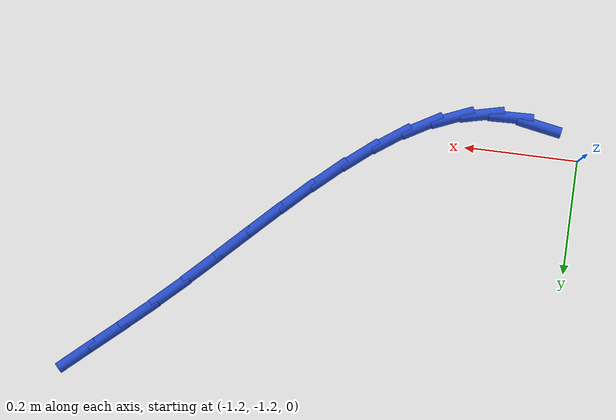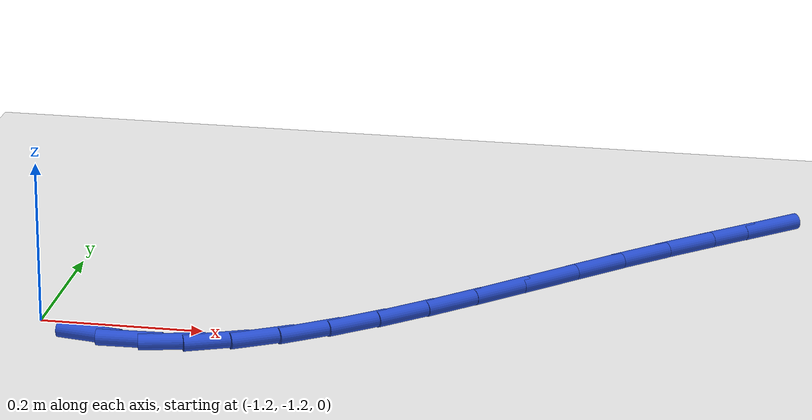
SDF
<sdf version="1.6">
 <world name="default">
  <model name="ground_plane">
   <static>1</static>
   <link name="link">
    <collision name="collision">
     <geometry><plane><normal>0 0 1</normal><size>100 100</size></plane></geometry>
     <surface><friction><ode><mu>100</mu><mu2>50</mu2></ode></friction></surface>
    </collision>
    <visual name="visual">
     <cast_shadows>0</cast_shadows>
     <geometry><plane><normal>0 0 1</normal><size>100 100</size></plane></geometry>
     <material>
      <script><uri>file://media/materials/scripts/gazebo.material</uri><name>Gazebo/WhiteGlow</name></script>
     </material>
    </visual>
   </link>
  </model>
  <model name="line">
   <link name="link_91">
    <pose>-1.1254201814748819 -1.2529980723732925 0.01 0 1.57 -0.17897596660575069</pose>
    <collision name="collision">
     <geometry><cylinder><radius>0.01</radius><length>0.08</length></cylinder></geometry>
    </collision>
    <visual name="visual">
     <material>
      <script><name>Gazebo/Blue</name><uri>file://media/materials/scripts/gazebo.material</uri></script>
     </material>
     <geometry><cylinder><radius>0.01</radius><length>0.08</length></cylinder></geometry>
    </visual>
   </link>
   <link name="link_92">
    <pose>-1.0741528408482792 -1.2622729384092701 0.01 0 1.57 0.028137320833538294</pose>
    <collision name="collision">
     <geometry><cylinder><radius>0.01</radius><length>0.08</length></cylinder></geometry>
    </collision>
    <visual name="visual">
     <material>
      <script><name>Gazebo/Blue</name><uri>file://media/materials/scripts/gazebo.material</uri></script>
     </material>
     <geometry><cylinder><radius>0.01</radius><length>0.08</length></cylinder></geometry>
    </visual>
   </link>
   <link name="link_93">
    <pose>-1.0229903401087515 -1.2608329826827058 0.01 0 1.57 0.229503462340504</pose>
    <collision name="collision">
     <geometry><cylinder><radius>0.01</radius><length>0.08</length></cylinder></geometry>
    </collision>
    <visual name="visual">
     <material>
      <script><name>Gazebo/Blue</name><uri>file://media/materials/scripts/gazebo.material</uri></script>
     </material>
     <geometry><cylinder><radius>0.01</radius><length>0.08</length></cylinder></geometry>
    </visual>
   </link>
   <link name="link_94">
    <pose>-0.9718972434792922 -1.248896630625944 0.01 0 1.57 0.39311429243680235</pose>
    <collision name="collision">
     <geometry><cylinder><radius>0.01</radius><length>0.08</length></cylinder></geometry>
    </collision>
    <visual name="visual">
     <material>
      <script><name>Gazebo/Blue</name><uri>file://media/materials/scripts/gazebo.material</uri></script>
     </material>
     <geometry><cylinder><radius>0.01</radius><length>0.08</length></cylinder></geometry>
    </visual>
   </link>
   <link name="link_95">
    <pose>-0.9208838034372935 -1.2277413521577152 0.01 0 1.57 0.5188630745969014</pose>
    <collision name="collision">
     <geometry><cylinder><radius>0.01</radius><length>0.08</length></cylinder></geometry>
    </collision>
    <visual name="visual">
     <material>
      <script><name>Gazebo/Blue</name><uri>file://media/materials/scripts/gazebo.material</uri></script>
     </material>
     <geometry><cylinder><radius>0.01</radius><length>0.08</length></cylinder></geometry>
    </visual>
   </link>
   <link name="link_96">
    <pose>-0.8699610107186984 -1.1986617298804947 0.01 0 1.57 0.6125009462197967</pose>
    <collision name="collision">
     <geometry><cylinder><radius>0.01</radius><length>0.08</length></cylinder></geometry>
    </collision>
    <visual name="visual">
     <material>
      <script><name>Gazebo/Blue</name><uri>file://media/materials/scripts/gazebo.material</uri></script>
     </material>
     <geometry><cylinder><radius>0.01</radius><length>0.08</length></cylinder></geometry>
    </visual>
   </link>
   <link name="link_97">
    <pose>-0.8191398560594522 -1.162952346396758 0.01 0 1.57 0.6804593084197978</pose>
    <collision name="collision">
     <geometry><cylinder><radius>0.01</radius><length>0.08</length></cylinder></geometry>
    </collision>
    <visual name="visual">
     <material>
      <script><name>Gazebo/Blue</name><uri>file://media/materials/scripts/gazebo.material</uri></script>
     </material>
     <geometry><cylinder><radius>0.01</radius><length>0.08</length></cylinder></geometry>
    </visual>
   </link>
   <link name="link_98">
    <pose>-0.7684313301954976 -1.1219077843089797 0.01 0 1.57 0.7279747478134685</pose>
    <collision name="collision">
     <geometry><cylinder><radius>0.01</radius><length>0.08</length></cylinder></geometry>
    </collision>
    <visual name="visual">
     <material>
      <script><name>Gazebo/Blue</name><uri>file://media/materials/scripts/gazebo.material</uri></script>
     </material>
     <geometry><cylinder><radius>0.01</radius><length>0.08</length></cylinder></geometry>
    </visual>
   </link>
   <link name="link_99">
    <pose>-0.7178464238627792 -1.0768226262196352 0.01 0 1.57 0.7587552480153965</pose>
    <collision name="collision">
     <geometry><cylinder><radius>0.01</radius><length>0.08</length></cylinder></geometry>
    </collision>
    <visual name="visual">
     <material>
      <script><name>Gazebo/Blue</name><uri>file://media/materials/scripts/gazebo.material</uri></script>
     </material>
     <geometry><cylinder><radius>0.01</radius><length>0.08</length></cylinder></geometry>
    </visual>
   </link>
   <link name="link_100">
    <pose>-0.6673961277972396 -1.0289914547311987 0.01 0 1.57 0.7751352391142354</pose>
    <collision name="collision">
     <geometry><cylinder><radius>0.01</radius><length>0.08</length></cylinder></geometry>
    </collision>
    <visual name="visual">
     <material>
      <script><name>Gazebo/Blue</name><uri>file://media/materials/scripts/gazebo.material</uri></script>
     </material>
     <geometry><cylinder><radius>0.01</radius><length>0.08</length></cylinder></geometry>
    </visual>
   </link>
   <link name="link_101">
    <pose>-0.6170914327348237 -0.9797088524461465 0.01 0 1.57 0.778282405891488</pose>
    <collision name="collision">
     <geometry><cylinder><radius>0.01</radius><length>0.08</length></cylinder></geometry>
    </collision>
    <visual name="visual">
     <material>
      <script><name>Gazebo/Blue</name><uri>file://media/materials/scripts/gazebo.material</uri></script>
     </material>
     <geometry><cylinder><radius>0.01</radius><length>0.08</length></cylinder></geometry>
    </visual>
   </link>
   <link name="link_102">
    <pose>-0.5669433294114753 -0.930269401966953 0.01 0 1.57 0.7683183575233127</pose>
    <collision name="collision">
     <geometry><cylinder><radius>0.01</radius><length>0.08</length></cylinder></geometry>
    </collision>
    <visual name="visual">
     <material>
      <script><name>Gazebo/Blue</name><uri>file://media/materials/scripts/gazebo.material</uri></script>
     </material>
     <geometry><cylinder><radius>0.01</radius><length>0.08</length></cylinder></geometry>
    </visual>
   </link>
   <link name="link_103">
    <pose>-0.5169628085631378 -0.8819676858960932 0.01 0 1.57 0.7456236289480966</pose>
    <collision name="collision">
     <geometry><cylinder><radius>0.01</radius><length>0.08</length></cylinder></geometry>
    </collision>
    <visual name="visual">
     <material>
      <script><name>Gazebo/Blue</name><uri>file://media/materials/scripts/gazebo.material</uri></script>
     </material>
     <geometry><cylinder><radius>0.01</radius><length>0.08</length></cylinder></geometry>
    </visual>
   </link>
   <link name="link_104">
    <pose>-0.46718157670491556 -0.8359969534723871 0.01 0 1.57 0.7247030618168102</pose>
    <collision name="collision">
     <geometry><cylinder><radius>0.01</radius><length>0.08</length></cylinder></geometry>
    </collision>
    <visual name="visual">
     <material>
      <script><name>Gazebo/Blue</name><uri>file://media/materials/scripts/gazebo.material</uri></script>
     </material>
     <geometry><cylinder><radius>0.01</radius><length>0.08</length></cylinder></geometry>
    </visual>
   </link>
   <link name="link_105">
    <pose>-0.4178782554101537 -0.7923426435407411 0.01 0 1.57 0.7165968398345395</pose>
    <collision name="collision">
     <geometry><cylinder><radius>0.01</radius><length>0.08</length></cylinder></geometry>
    </collision>
    <visual name="visual">
     <material>
      <script><name>Gazebo/Blue</name><uri>file://media/materials/scripts/gazebo.material</uri></script>
     </material>
     <geometry><cylinder><radius>0.01</radius><length>0.08</length></cylinder></geometry>
    </visual>
   </link>
   <link name="link_106">
    <pose>-0.3694937085906203 -0.7501965698667379 0.01 0 1.57 0.722618746613869</pose>
    <collision name="collision">
     <geometry><cylinder><radius>0.01</radius><length>0.08</length></cylinder></geometry>
    </collision>
    <visual name="visual">
     <material>
      <script><name>Gazebo/Blue</name><uri>file://media/materials/scripts/gazebo.material</uri></script>
     </material>
     <geometry><cylinder><radius>0.01</radius><length>0.08</length></cylinder></geometry>
    </visual>
   </link>
  </model>
 </world>
</sdf>
